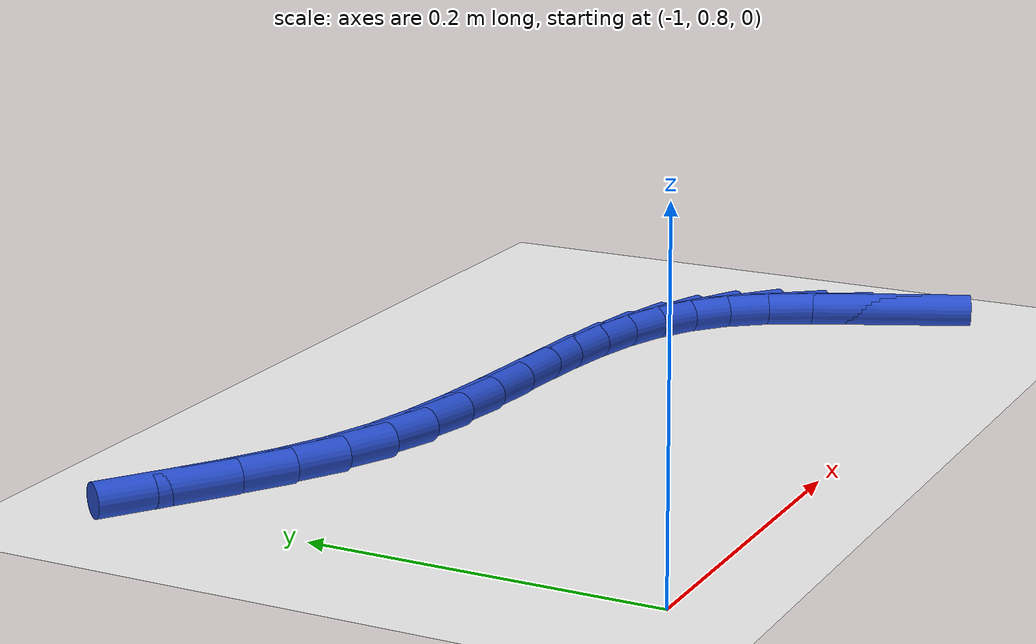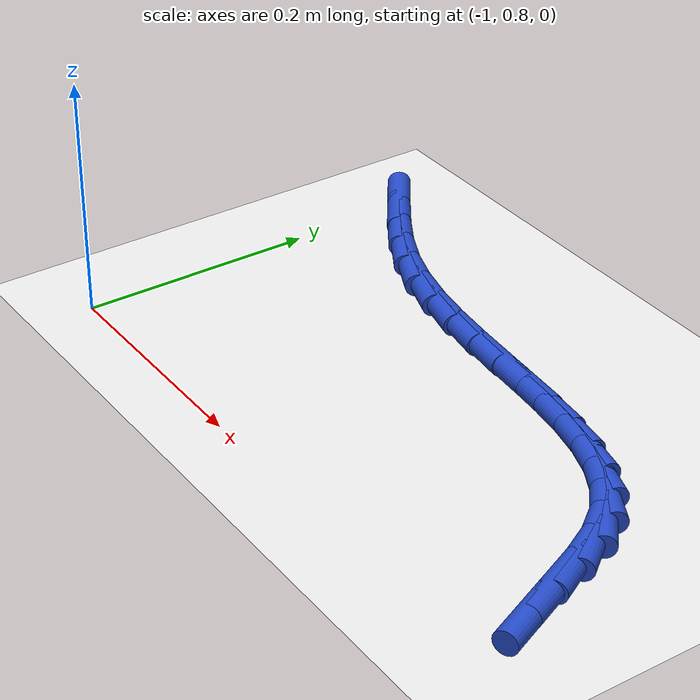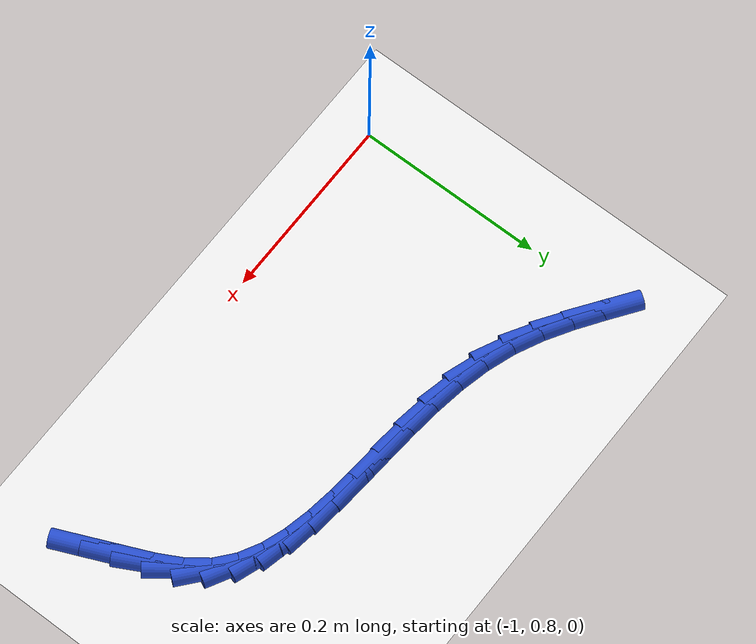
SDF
<sdf version="1.6">
 <world name="default">
  <model name="ground_plane">
   <static>1</static>
   <link name="link">
    <collision name="collision">
     <geometry><plane><normal>0 0 1</normal><size>100 100</size></plane></geometry>
     <surface><friction><ode><mu>100</mu><mu2>50</mu2></ode></friction></surface>
    </collision>
    <visual name="visual">
     <cast_shadows>0</cast_shadows>
     <geometry><plane><normal>0 0 1</normal><size>100 100</size></plane></geometry>
     <material>
      <script><uri>file://media/materials/scripts/gazebo.material</uri><name>Gazebo/WhiteGlow</name></script>
     </material>
    </visual>
   </link>
  </model>
  <model name="line">
   <link name="link_36">
    <pose>-0.4960767192298586 0.8571841568252043 0.01 0 1.57 -1.1598960382296277</pose>
    <collision name="collision">
     <geometry><cylinder><radius>0.01</radius><length>0.08</length></cylinder></geometry>
    </collision>
    <visual name="visual">
     <material>
      <script><name>Gazebo/Blue</name><uri>file://media/materials/scripts/gazebo.material</uri></script>
     </material>
     <geometry><cylinder><radius>0.01</radius><length>0.08</length></cylinder></geometry>
    </visual>
   </link>
   <link name="link_37">
    <pose>-0.508525057934264 0.885754921367725 0.01 0 1.57 -1.1573278387355874</pose>
    <collision name="collision">
     <geometry><cylinder><radius>0.01</radius><length>0.08</length></cylinder></geometry>
    </collision>
    <visual name="visual">
     <material>
      <script><name>Gazebo/Blue</name><uri>file://media/materials/scripts/gazebo.material</uri></script>
     </material>
     <geometry><cylinder><radius>0.01</radius><length>0.08</length></cylinder></geometry>
    </visual>
   </link>
   <link name="link_38">
    <pose>-0.520852134341846 0.9138501081912198 0.01 0 1.57 -1.0822256443290847</pose>
    <collision name="collision">
     <geometry><cylinder><radius>0.01</radius><length>0.08</length></cylinder></geometry>
    </collision>
    <visual name="visual">
     <material>
      <script><name>Gazebo/Blue</name><uri>file://media/materials/scripts/gazebo.material</uri></script>
     </material>
     <geometry><cylinder><radius>0.01</radius><length>0.08</length></cylinder></geometry>
    </visual>
   </link>
   <link name="link_39">
    <pose>-0.5345594446458743 0.9396373679923788 0.01 0 1.57 -0.9182252649341252</pose>
    <collision name="collision">
     <geometry><cylinder><radius>0.01</radius><length>0.08</length></cylinder></geometry>
    </collision>
    <visual name="visual">
     <material>
      <script><name>Gazebo/Blue</name><uri>file://media/materials/scripts/gazebo.material</uri></script>
     </material>
     <geometry><cylinder><radius>0.01</radius><length>0.08</length></cylinder></geometry>
    </visual>
   </link>
   <link name="link_40">
    <pose>-0.5511261184801582 0.9613138565300912 0.01 0 1.57 -0.697713694980659</pose>
    <collision name="collision">
     <geometry><cylinder><radius>0.01</radius><length>0.08</length></cylinder></geometry>
    </collision>
    <visual name="visual">
     <material>
      <script><name>Gazebo/Blue</name><uri>file://media/materials/scripts/gazebo.material</uri></script>
     </material>
     <geometry><cylinder><radius>0.01</radius><length>0.08</length></cylinder></geometry>
    </visual>
   </link>
   <link name="link_41">
    <pose>-0.5712138021008802 0.9781551206294322 0.01 0 1.57 -0.4983171802083048</pose>
    <collision name="collision">
     <geometry><cylinder><radius>0.01</radius><length>0.08</length></cylinder></geometry>
    </collision>
    <visual name="visual">
     <material>
      <script><name>Gazebo/Blue</name><uri>file://media/materials/scripts/gazebo.material</uri></script>
     </material>
     <geometry><cylinder><radius>0.01</radius><length>0.08</length></cylinder></geometry>
    </visual>
   </link>
   <link name="link_42">
    <pose>-0.5944513511023222 0.9907991228581307 0.01 0 1.57 -0.33974240535872896</pose>
    <collision name="collision">
     <geometry><cylinder><radius>0.01</radius><length>0.08</length></cylinder></geometry>
    </collision>
    <visual name="visual">
     <material>
      <script><name>Gazebo/Blue</name><uri>file://media/materials/scripts/gazebo.material</uri></script>
     </material>
     <geometry><cylinder><radius>0.01</radius><length>0.08</length></cylinder></geometry>
    </visual>
   </link>
   <link name="link_43">
    <pose>-0.6204014539082907 0.999971110843731 0.01 0 1.57 -0.22382593608973778</pose>
    <collision name="collision">
     <geometry><cylinder><radius>0.01</radius><length>0.08</length></cylinder></geometry>
    </collision>
    <visual name="visual">
     <material>
      <script><name>Gazebo/Blue</name><uri>file://media/materials/scripts/gazebo.material</uri></script>
     </material>
     <geometry><cylinder><radius>0.01</radius><length>0.08</length></cylinder></geometry>
    </visual>
   </link>
   <link name="link_44">
    <pose>-0.6486267989425929 1.006396332213779 0.01 0 1.57 -0.1454467392183148</pose>
    <collision name="collision">
     <geometry><cylinder><radius>0.01</radius><length>0.08</length></cylinder></geometry>
    </collision>
    <visual name="visual">
     <material>
      <script><name>Gazebo/Blue</name><uri>file://media/materials/scripts/gazebo.material</uri></script>
     </material>
     <geometry><cylinder><radius>0.01</radius><length>0.08</length></cylinder></geometry>
    </visual>
   </link>
   <link name="link_45">
    <pose>-0.6786900746290351 1.010800034595819 0.01 0 1.57 -0.09844256660133281</pose>
    <collision name="collision">
     <geometry><cylinder><radius>0.01</radius><length>0.08</length></cylinder></geometry>
    </collision>
    <visual name="visual">
     <material>
      <script><name>Gazebo/Blue</name><uri>file://media/materials/scripts/gazebo.material</uri></script>
     </material>
     <geometry><cylinder><radius>0.01</radius><length>0.08</length></cylinder></geometry>
    </visual>
   </link>
   <link name="link_46">
    <pose>-0.7101539693914242 1.0139074656173959 0.01 0 1.57 -0.07805957110505754</pose>
    <collision name="collision">
     <geometry><cylinder><radius>0.01</radius><length>0.08</length></cylinder></geometry>
    </collision>
    <visual name="visual">
     <material>
      <script><name>Gazebo/Blue</name><uri>file://media/materials/scripts/gazebo.material</uri></script>
     </material>
     <geometry><cylinder><radius>0.01</radius><length>0.08</length></cylinder></geometry>
    </visual>
   </link>
   <link name="link_47">
    <pose>-0.7425811716535667 1.016443872906055 0.01 0 1.57 -0.08146935330045363</pose>
    <collision name="collision">
     <geometry><cylinder><radius>0.01</radius><length>0.08</length></cylinder></geometry>
    </collision>
    <visual name="visual">
     <material>
      <script><name>Gazebo/Blue</name><uri>file://media/materials/scripts/gazebo.material</uri></script>
     </material>
     <geometry><cylinder><radius>0.01</radius><length>0.08</length></cylinder></geometry>
    </visual>
   </link>
   <link name="link_48">
    <pose>-0.7755343698392695 1.019134504089341 0.01 0 1.57 -0.10763025873868412</pose>
    <collision name="collision">
     <geometry><cylinder><radius>0.01</radius><length>0.08</length></cylinder></geometry>
    </collision>
    <visual name="visual">
     <material>
      <script><name>Gazebo/Blue</name><uri>file://media/materials/scripts/gazebo.material</uri></script>
     </material>
     <geometry><cylinder><radius>0.01</radius><length>0.08</length></cylinder></geometry>
    </visual>
   </link>
   <link name="link_49">
    <pose>-0.8085762523723394 1.0227046067947991 0.01 0 1.57 -0.15698172734042742</pose>
    <collision name="collision">
     <geometry><cylinder><radius>0.01</radius><length>0.08</length></cylinder></geometry>
    </collision>
    <visual name="visual">
     <material>
      <script><name>Gazebo/Blue</name><uri>file://media/materials/scripts/gazebo.material</uri></script>
     </material>
     <geometry><cylinder><radius>0.01</radius><length>0.08</length></cylinder></geometry>
    </visual>
   </link>
   <link name="link_50">
    <pose>-0.8412695076765828 1.0278794286499742 0.01 0 1.57 -0.23100706201490087</pose>
    <collision name="collision">
     <geometry><cylinder><radius>0.01</radius><length>0.08</length></cylinder></geometry>
    </collision>
    <visual name="visual">
     <material>
      <script><name>Gazebo/Blue</name><uri>file://media/materials/scripts/gazebo.material</uri></script>
     </material>
     <geometry><cylinder><radius>0.01</radius><length>0.08</length></cylinder></geometry>
    </visual>
   </link>
   <link name="link_51">
    <pose>-0.8731768241758071 1.0353842172824113 0.01 0 1.57 -0.3314561421136073</pose>
    <collision name="collision">
     <geometry><cylinder><radius>0.01</radius><length>0.08</length></cylinder></geometry>
    </collision>
    <visual name="visual">
     <material>
      <script><name>Gazebo/Blue</name><uri>file://media/materials/scripts/gazebo.material</uri></script>
     </material>
     <geometry><cylinder><radius>0.01</radius><length>0.08</length></cylinder></geometry>
    </visual>
   </link>
   <link name="link_52">
    <pose>-0.9038608902938181 1.045944220319655 0.01 0 1.57 -0.4488613184978638</pose>
    <collision name="collision">
     <geometry><cylinder><radius>0.01</radius><length>0.08</length></cylinder></geometry>
    </collision>
    <visual name="visual">
     <material>
      <script><name>Gazebo/Blue</name><uri>file://media/materials/scripts/gazebo.material</uri></script>
     </material>
     <geometry><cylinder><radius>0.01</radius><length>0.08</length></cylinder></geometry>
    </visual>
   </link>
   <link name="link_53">
    <pose>-0.9329962437421928 1.0599773056451225 0.01 0 1.57 -0.5405208021389962</pose>
    <collision name="collision">
     <geometry><cylinder><radius>0.01</radius><length>0.08</length></cylinder></geometry>
    </collision>
    <visual name="visual">
     <material>
      <script><name>Gazebo/Blue</name><uri>file://media/materials/scripts/gazebo.material</uri></script>
     </material>
     <geometry><cylinder><radius>0.01</radius><length>0.08</length></cylinder></geometry>
    </visual>
   </link>
   <link name="link_54">
    <pose>-0.9607243975339237 1.0766180182751295 0.01 0 1.57 -0.5964221918145656</pose>
    <collision name="collision">
     <geometry><cylinder><radius>0.01</radius><length>0.08</length></cylinder></geometry>
    </collision>
    <visual name="visual">
     <material>
      <script><name>Gazebo/Blue</name><uri>file://media/materials/scripts/gazebo.material</uri></script>
     </material>
     <geometry><cylinder><radius>0.01</radius><length>0.08</length></cylinder></geometry>
    </visual>
   </link>
   <link name="link_55">
    <pose>-0.9873087153436709 1.0946660381056839 0.01 0 1.57 -0.6175423319244921</pose>
    <collision name="collision">
     <geometry><cylinder><radius>0.01</radius><length>0.08</length></cylinder></geometry>
    </collision>
    <visual name="visual">
     <material>
      <script><name>Gazebo/Blue</name><uri>file://media/materials/scripts/gazebo.material</uri></script>
     </material>
     <geometry><cylinder><radius>0.01</radius><length>0.08</length></cylinder></geometry>
    </visual>
   </link>
  </model>
 </world>
</sdf>
